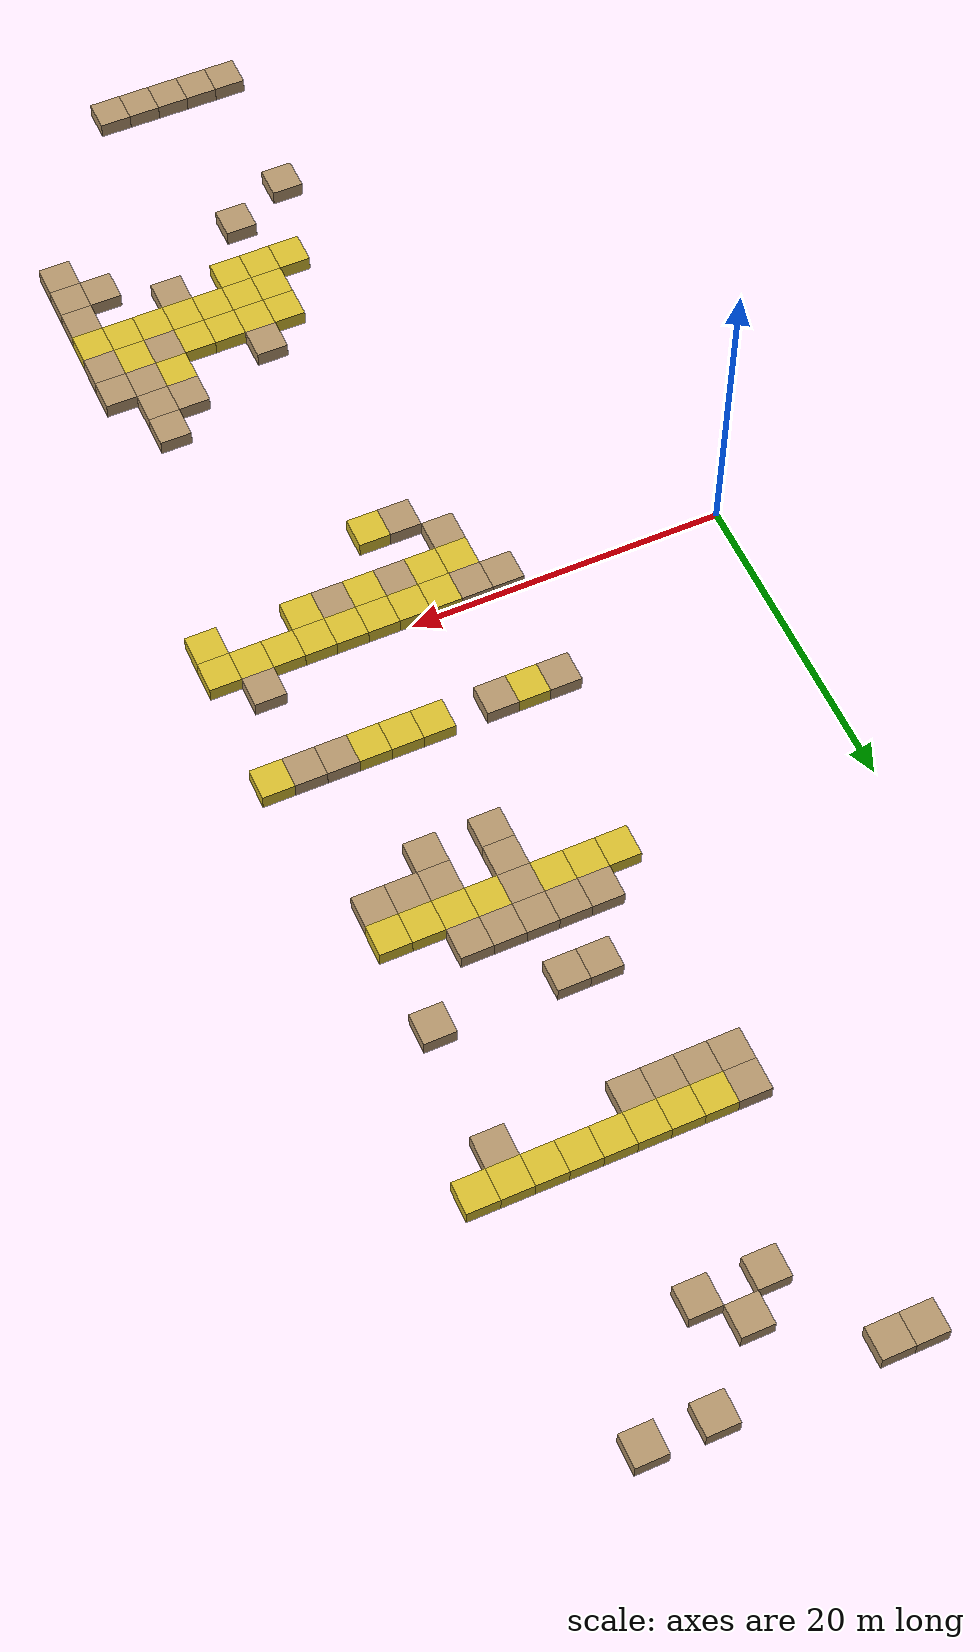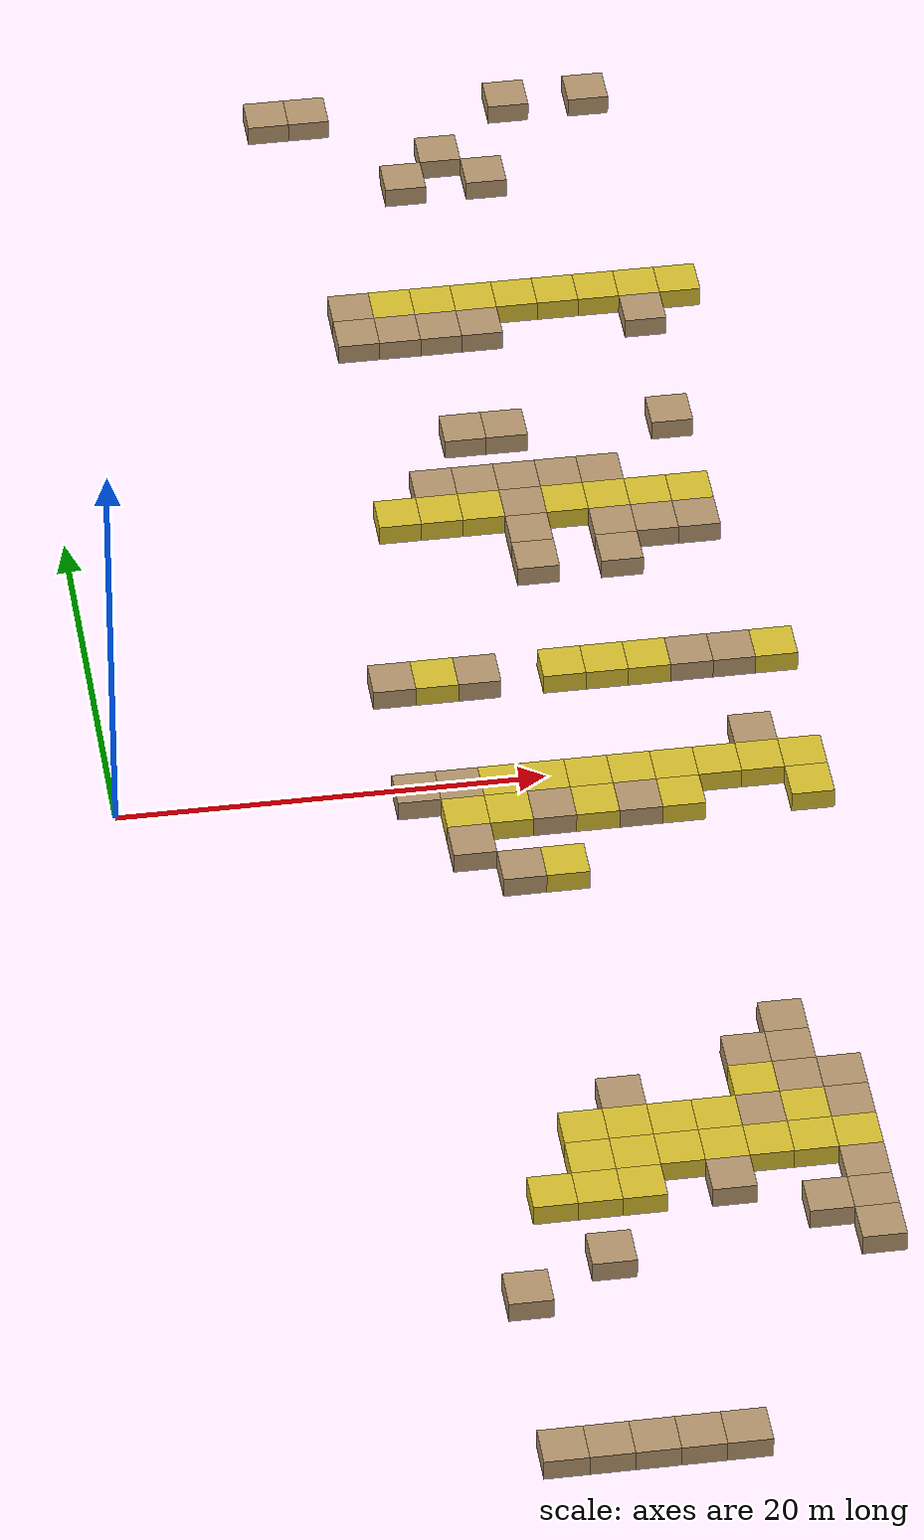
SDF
<sdf version="1.6">
 <world name="map5_factory_approx">
  <model name="map5_obstacle_blocks">
   <static>true</static>
   <link name="obs_0068_0030">
    <pose>27.790 -1.041 0.500 0 0 0</pose>
    <collision name="collision"><geometry><box><size>2.000 2.000 1.000</size></box></geometry></collision>
    <visual name="visual">
     <geometry><box><size>2.000 2.000 1.000</size></box></geometry>
     <material><ambient>0.84 0.74 0.18 1</ambient><diffuse>0.84 0.74 0.18 1</diffuse></material>
    </visual>
   </link>
   <link name="obs_0067_0030">
    <pose>25.790 -1.041 0.500 0 0 0</pose>
    <collision name="collision"><geometry><box><size>2.000 2.000 1.000</size></box></geometry></collision>
    <visual name="visual">
     <geometry><box><size>2.000 2.000 1.000</size></box></geometry>
     <material><ambient>0.84 0.74 0.18 1</ambient><diffuse>0.84 0.74 0.18 1</diffuse></material>
    </visual>
   </link>
   <link name="obs_0065_0031">
    <pose>21.790 -3.041 0.500 0 0 0</pose>
    <collision name="collision"><geometry><box><size>2.000 2.000 1.000</size></box></geometry></collision>
    <visual name="visual">
     <geometry><box><size>2.000 2.000 1.000</size></box></geometry>
     <material><ambient>0.84 0.74 0.18 1</ambient><diffuse>0.84 0.74 0.18 1</diffuse></material>
    </visual>
   </link>
   <link name="obs_0062_0031">
    <pose>15.790 -3.041 0.500 0 0 0</pose>
    <collision name="collision"><geometry><box><size>2.000 2.000 1.000</size></box></geometry></collision>
    <visual name="visual">
     <geometry><box><size>2.000 2.000 1.000</size></box></geometry>
     <material><ambient>0.84 0.74 0.18 1</ambient><diffuse>0.84 0.74 0.18 1</diffuse></material>
    </visual>
   </link>
   <link name="obs_0066_0030">
    <pose>23.790 -1.041 0.500 0 0 0</pose>
    <collision name="collision"><geometry><box><size>2.000 2.000 1.000</size></box></geometry></collision>
    <visual name="visual">
     <geometry><box><size>2.000 2.000 1.000</size></box></geometry>
     <material><ambient>0.84 0.74 0.18 1</ambient><diffuse>0.84 0.74 0.18 1</diffuse></material>
    </visual>
   </link>
   <link name="obs_0069_0030">
    <pose>29.790 -1.041 0.500 0 0 0</pose>
    <collision name="collision"><geometry><box><size>2.000 2.000 1.000</size></box></geometry></collision>
    <visual name="visual">
     <geometry><box><size>2.000 2.000 1.000</size></box></geometry>
     <material><ambient>0.84 0.74 0.18 1</ambient><diffuse>0.84 0.74 0.18 1</diffuse></material>
    </visual>
   </link>
   <link name="obs_0064_0030">
    <pose>19.790 -1.041 0.500 0 0 0</pose>
    <collision name="collision"><geometry><box><size>2.000 2.000 1.000</size></box></geometry></collision>
    <visual name="visual">
     <geometry><box><size>2.000 2.000 1.000</size></box></geometry>
     <material><ambient>0.84 0.74 0.18 1</ambient><diffuse>0.84 0.74 0.18 1</diffuse></material>
    </visual>
   </link>
   <link name="obs_0070_0030">
    <pose>31.790 -1.041 0.500 0 0 0</pose>
    <collision name="collision"><geometry><box><size>2.000 2.000 1.000</size></box></geometry></collision>
    <visual name="visual">
     <geometry><box><size>2.000 2.000 1.000</size></box></geometry>
     <material><ambient>0.84 0.74 0.18 1</ambient><diffuse>0.84 0.74 0.18 1</diffuse></material>
    </visual>
   </link>
   <link name="obs_0063_0043">
    <pose>17.790 -27.041 0.500 0 0 0</pose>
    <collision name="collision"><geometry><box><size>2.000 2.000 1.000</size></box></geometry></collision>
    <visual name="visual">
     <geometry><box><size>2.000 2.000 1.000</size></box></geometry>
     <material><ambient>0.84 0.74 0.18 1</ambient><diffuse>0.84 0.74 0.18 1</diffuse></material>
    </visual>
   </link>
   <link name="obs_0067_0031">
    <pose>25.790 -3.041 0.500 0 0 0</pose>
    <collision name="collision"><geometry><box><size>2.000 2.000 1.000</size></box></geometry></collision>
    <visual name="visual">
     <geometry><box><size>2.000 2.000 1.000</size></box></geometry>
     <material><ambient>0.84 0.74 0.18 1</ambient><diffuse>0.84 0.74 0.18 1</diffuse></material>
    </visual>
   </link>
   <link name="obs_0065_0030">
    <pose>21.790 -1.041 0.500 0 0 0</pose>
    <collision name="collision"><geometry><box><size>2.000 2.000 1.000</size></box></geometry></collision>
    <visual name="visual">
     <geometry><box><size>2.000 2.000 1.000</size></box></geometry>
     <material><ambient>0.84 0.74 0.18 1</ambient><diffuse>0.84 0.74 0.18 1</diffuse></material>
    </visual>
   </link>
   <link name="obs_0070_0031">
    <pose>31.790 -3.041 0.500 0 0 0</pose>
    <collision name="collision"><geometry><box><size>2.000 2.000 1.000</size></box></geometry></collision>
    <visual name="visual">
     <geometry><box><size>2.000 2.000 1.000</size></box></geometry>
     <material><ambient>0.84 0.74 0.18 1</ambient><diffuse>0.84 0.74 0.18 1</diffuse></material>
    </visual>
   </link>
   <link name="obs_0068_0042">
    <pose>27.790 -25.041 0.500 0 0 0</pose>
    <collision name="collision"><geometry><box><size>2.000 2.000 1.000</size></box></geometry></collision>
    <visual name="visual">
     <geometry><box><size>2.000 2.000 1.000</size></box></geometry>
     <material><ambient>0.84 0.74 0.18 1</ambient><diffuse>0.84 0.74 0.18 1</diffuse></material>
    </visual>
   </link>
   <link name="obs_0067_0043">
    <pose>25.790 -27.041 0.500 0 0 0</pose>
    <collision name="collision"><geometry><box><size>2.000 2.000 1.000</size></box></geometry></collision>
    <visual name="visual">
     <geometry><box><size>2.000 2.000 1.000</size></box></geometry>
     <material><ambient>0.84 0.74 0.18 1</ambient><diffuse>0.84 0.74 0.18 1</diffuse></material>
    </visual>
   </link>
   <link name="obs_0063_0044">
    <pose>17.790 -29.041 0.500 0 0 0</pose>
    <collision name="collision"><geometry><box><size>2.000 2.000 1.000</size></box></geometry></collision>
    <visual name="visual">
     <geometry><box><size>2.000 2.000 1.000</size></box></geometry>
     <material><ambient>0.84 0.74 0.18 1</ambient><diffuse>0.84 0.74 0.18 1</diffuse></material>
    </visual>
   </link>
   <link name="obs_0064_0042">
    <pose>19.790 -25.041 0.500 0 0 0</pose>
    <collision name="collision"><geometry><box><size>2.000 2.000 1.000</size></box></geometry></collision>
    <visual name="visual">
     <geometry><box><size>2.000 2.000 1.000</size></box></geometry>
     <material><ambient>0.84 0.74 0.18 1</ambient><diffuse>0.84 0.74 0.18 1</diffuse></material>
    </visual>
   </link>
   <link name="obs_0065_0043">
    <pose>21.790 -27.041 0.500 0 0 0</pose>
    <collision name="collision"><geometry><box><size>2.000 2.000 1.000</size></box></geometry></collision>
    <visual name="visual">
     <geometry><box><size>2.000 2.000 1.000</size></box></geometry>
     <material><ambient>0.84 0.74 0.18 1</ambient><diffuse>0.84 0.74 0.18 1</diffuse></material>
    </visual>
   </link>
   <link name="obs_0068_0043">
    <pose>27.790 -27.041 0.500 0 0 0</pose>
    <collision name="collision"><geometry><box><size>2.000 2.000 1.000</size></box></geometry></collision>
    <visual name="visual">
     <geometry><box><size>2.000 2.000 1.000</size></box></geometry>
     <material><ambient>0.84 0.74 0.18 1</ambient><diffuse>0.84 0.74 0.18 1</diffuse></material>
    </visual>
   </link>
   <link name="obs_0064_0043">
    <pose>19.790 -27.041 0.500 0 0 0</pose>
    <collision name="collision"><geometry><box><size>2.000 2.000 1.000</size></box></geometry></collision>
    <visual name="visual">
     <geometry><box><size>2.000 2.000 1.000</size></box></geometry>
     <material><ambient>0.84 0.74 0.18 1</ambient><diffuse>0.84 0.74 0.18 1</diffuse></material>
    </visual>
   </link>
   <link name="obs_0070_0026">
    <pose>31.790 6.959 0.500 0 0 0</pose>
    <collision name="collision"><geometry><box><size>2.000 2.000 1.000</size></box></geometry></collision>
    <visual name="visual">
     <geometry><box><size>2.000 2.000 1.000</size></box></geometry>
     <material><ambient>0.84 0.74 0.18 1</ambient><diffuse>0.84 0.74 0.18 1</diffuse></material>
    </visual>
   </link>
   <link name="obs_0063_0042">
    <pose>17.790 -25.041 0.500 0 0 0</pose>
    <collision name="collision"><geometry><box><size>2.000 2.000 1.000</size></box></geometry></collision>
    <visual name="visual">
     <geometry><box><size>2.000 2.000 1.000</size></box></geometry>
     <material><ambient>0.84 0.74 0.18 1</ambient><diffuse>0.84 0.74 0.18 1</diffuse></material>
    </visual>
   </link>
   <link name="obs_0070_0012">
    <pose>31.790 34.959 0.500 0 0 0</pose>
    <collision name="collision"><geometry><box><size>2.000 2.000 1.000</size></box></geometry></collision>
    <visual name="visual">
     <geometry><box><size>2.000 2.000 1.000</size></box></geometry>
     <material><ambient>0.84 0.74 0.18 1</ambient><diffuse>0.84 0.74 0.18 1</diffuse></material>
    </visual>
   </link>
   <link name="obs_0065_0026">
    <pose>21.790 6.959 0.500 0 0 0</pose>
    <collision name="collision"><geometry><box><size>2.000 2.000 1.000</size></box></geometry></collision>
    <visual name="visual">
     <geometry><box><size>2.000 2.000 1.000</size></box></geometry>
     <material><ambient>0.84 0.74 0.18 1</ambient><diffuse>0.84 0.74 0.18 1</diffuse></material>
    </visual>
   </link>
   <link name="obs_0062_0026">
    <pose>15.790 6.959 0.500 0 0 0</pose>
    <collision name="collision"><geometry><box><size>2.000 2.000 1.000</size></box></geometry></collision>
    <visual name="visual">
     <geometry><box><size>2.000 2.000 1.000</size></box></geometry>
     <material><ambient>0.84 0.74 0.18 1</ambient><diffuse>0.84 0.74 0.18 1</diffuse></material>
    </visual>
   </link>
   <link name="obs_0069_0043">
    <pose>29.790 -27.041 0.500 0 0 0</pose>
    <collision name="collision"><geometry><box><size>2.000 2.000 1.000</size></box></geometry></collision>
    <visual name="visual">
     <geometry><box><size>2.000 2.000 1.000</size></box></geometry>
     <material><ambient>0.84 0.74 0.18 1</ambient><diffuse>0.84 0.74 0.18 1</diffuse></material>
    </visual>
   </link>
   <link name="obs_0067_0012">
    <pose>25.790 34.959 0.500 0 0 0</pose>
    <collision name="collision"><geometry><box><size>2.000 2.000 1.000</size></box></geometry></collision>
    <visual name="visual">
     <geometry><box><size>2.000 2.000 1.000</size></box></geometry>
     <material><ambient>0.84 0.74 0.18 1</ambient><diffuse>0.84 0.74 0.18 1</diffuse></material>
    </visual>
   </link>
   <link name="obs_0066_0043">
    <pose>23.790 -27.041 0.500 0 0 0</pose>
    <collision name="collision"><geometry><box><size>2.000 2.000 1.000</size></box></geometry></collision>
    <visual name="visual">
     <geometry><box><size>2.000 2.000 1.000</size></box></geometry>
     <material><ambient>0.84 0.74 0.18 1</ambient><diffuse>0.84 0.74 0.18 1</diffuse></material>
    </visual>
   </link>
   <link name="obs_0068_0012">
    <pose>27.790 34.959 0.500 0 0 0</pose>
    <collision name="collision"><geometry><box><size>2.000 2.000 1.000</size></box></geometry></collision>
    <visual name="visual">
     <geometry><box><size>2.000 2.000 1.000</size></box></geometry>
     <material><ambient>0.84 0.74 0.18 1</ambient><diffuse>0.84 0.74 0.18 1</diffuse></material>
    </visual>
   </link>
   <link name="obs_0066_0012">
    <pose>23.790 34.959 0.500 0 0 0</pose>
    <collision name="collision"><geometry><box><size>2.000 2.000 1.000</size></box></geometry></collision>
    <visual name="visual">
     <geometry><box><size>2.000 2.000 1.000</size></box></geometry>
     <material><ambient>0.84 0.74 0.18 1</ambient><diffuse>0.84 0.74 0.18 1</diffuse></material>
    </visual>
   </link>
   <link name="obs_0067_0026">
    <pose>25.790 6.959 0.500 0 0 0</pose>
    <collision name="collision"><geometry><box><size>2.000 2.000 1.000</size></box></geometry></collision>
    <visual name="visual">
     <geometry><box><size>2.000 2.000 1.000</size></box></geometry>
     <material><ambient>0.84 0.74 0.18 1</ambient><diffuse>0.84 0.74 0.18 1</diffuse></material>
    </visual>
   </link>
   <link name="obs_0066_0042">
    <pose>23.790 -25.041 0.500 0 0 0</pose>
    <collision name="collision"><geometry><box><size>2.000 2.000 1.000</size></box></geometry></collision>
    <visual name="visual">
     <geometry><box><size>2.000 2.000 1.000</size></box></geometry>
     <material><ambient>0.84 0.74 0.18 1</ambient><diffuse>0.84 0.74 0.18 1</diffuse></material>
    </visual>
   </link>
   <link name="obs_0065_0012">
    <pose>21.790 34.959 0.500 0 0 0</pose>
    <collision name="collision"><geometry><box><size>2.000 2.000 1.000</size></box></geometry></collision>
    <visual name="visual">
     <geometry><box><size>2.000 2.000 1.000</size></box></geometry>
     <material><ambient>0.84 0.74 0.18 1</ambient><diffuse>0.84 0.74 0.18 1</diffuse></material>
    </visual>
   </link>
   <link name="obs_0069_0020">
    <pose>29.790 18.959 0.500 0 0 0</pose>
    <collision name="collision"><geometry><box><size>2.000 2.000 1.000</size></box></geometry></collision>
    <visual name="visual">
     <geometry><box><size>2.000 2.000 1.000</size></box></geometry>
     <material><ambient>0.84 0.74 0.18 1</ambient><diffuse>0.84 0.74 0.18 1</diffuse></material>
    </visual>
   </link>
   <link name="obs_0064_0020">
    <pose>19.790 18.959 0.500 0 0 0</pose>
    <collision name="collision"><geometry><box><size>2.000 2.000 1.000</size></box></geometry></collision>
    <visual name="visual">
     <geometry><box><size>2.000 2.000 1.000</size></box></geometry>
     <material><ambient>0.84 0.74 0.18 1</ambient><diffuse>0.84 0.74 0.18 1</diffuse></material>
    </visual>
   </link>
   <link name="obs_0063_0020">
    <pose>17.790 18.959 0.500 0 0 0</pose>
    <collision name="collision"><geometry><box><size>2.000 2.000 1.000</size></box></geometry></collision>
    <visual name="visual">
     <geometry><box><size>2.000 2.000 1.000</size></box></geometry>
     <material><ambient>0.84 0.74 0.18 1</ambient><diffuse>0.84 0.74 0.18 1</diffuse></material>
    </visual>
   </link>
   <link name="obs_0068_0020">
    <pose>27.790 18.959 0.500 0 0 0</pose>
    <collision name="collision"><geometry><box><size>2.000 2.000 1.000</size></box></geometry></collision>
    <visual name="visual">
     <geometry><box><size>2.000 2.000 1.000</size></box></geometry>
     <material><ambient>0.84 0.74 0.18 1</ambient><diffuse>0.84 0.74 0.18 1</diffuse></material>
    </visual>
   </link>
   <link name="obs_0065_0042">
    <pose>21.790 -25.041 0.500 0 0 0</pose>
    <collision name="collision"><geometry><box><size>2.000 2.000 1.000</size></box></geometry></collision>
    <visual name="visual">
     <geometry><box><size>2.000 2.000 1.000</size></box></geometry>
     <material><ambient>0.84 0.74 0.18 1</ambient><diffuse>0.84 0.74 0.18 1</diffuse></material>
    </visual>
   </link>
   <link name="obs_0067_0020">
    <pose>25.790 18.959 0.500 0 0 0</pose>
    <collision name="collision"><geometry><box><size>2.000 2.000 1.000</size></box></geometry></collision>
    <visual name="visual">
     <geometry><box><size>2.000 2.000 1.000</size></box></geometry>
     <material><ambient>0.84 0.74 0.18 1</ambient><diffuse>0.84 0.74 0.18 1</diffuse></material>
    </visual>
   </link>
   <link name="obs_0064_0012">
    <pose>19.790 34.959 0.500 0 0 0</pose>
    <collision name="collision"><geometry><box><size>2.000 2.000 1.000</size></box></geometry></collision>
    <visual name="visual">
     <geometry><box><size>2.000 2.000 1.000</size></box></geometry>
     <material><ambient>0.84 0.74 0.18 1</ambient><diffuse>0.84 0.74 0.18 1</diffuse></material>
    </visual>
   </link>
   <link name="obs_0063_0012">
    <pose>17.790 34.959 0.500 0 0 0</pose>
    <collision name="collision"><geometry><box><size>2.000 2.000 1.000</size></box></geometry></collision>
    <visual name="visual">
     <geometry><box><size>2.000 2.000 1.000</size></box></geometry>
     <material><ambient>0.84 0.74 0.18 1</ambient><diffuse>0.84 0.74 0.18 1</diffuse></material>
    </visual>
   </link>
   <link name="obs_0066_0020">
    <pose>23.790 18.959 0.500 0 0 0</pose>
    <collision name="collision"><geometry><box><size>2.000 2.000 1.000</size></box></geometry></collision>
    <visual name="visual">
     <geometry><box><size>2.000 2.000 1.000</size></box></geometry>
     <material><ambient>0.84 0.74 0.18 1</ambient><diffuse>0.84 0.74 0.18 1</diffuse></material>
    </visual>
   </link>
   <link name="obs_0062_0020">
    <pose>15.790 18.959 0.500 0 0 0</pose>
    <collision name="collision"><geometry><box><size>2.000 2.000 1.000</size></box></geometry></collision>
    <visual name="visual">
     <geometry><box><size>2.000 2.000 1.000</size></box></geometry>
     <material><ambient>0.84 0.74 0.18 1</ambient><diffuse>0.84 0.74 0.18 1</diffuse></material>
    </visual>
   </link>
   <link name="obs_0067_0041">
    <pose>25.790 -23.041 0.500 0 0 0</pose>
    <collision name="collision"><geometry><box><size>2.000 2.000 1.000</size></box></geometry></collision>
    <visual name="visual">
     <geometry><box><size>2.000 2.000 1.000</size></box></geometry>
     <material><ambient>0.84 0.74 0.18 1</ambient><diffuse>0.84 0.74 0.18 1</diffuse></material>
    </visual>
   </link>
   <link name="obs_0069_0012">
    <pose>29.790 34.959 0.500 0 0 0</pose>
    <collision name="collision"><geometry><box><size>2.000 2.000 1.000</size></box></geometry></collision>
    <visual name="visual">
     <geometry><box><size>2.000 2.000 1.000</size></box></geometry>
     <material><ambient>0.84 0.74 0.18 1</ambient><diffuse>0.84 0.74 0.18 1</diffuse></material>
    </visual>
   </link>
   <link name="obs_0066_0026">
    <pose>23.790 6.959 0.500 0 0 0</pose>
    <collision name="collision"><geometry><box><size>2.000 2.000 1.000</size></box></geometry></collision>
    <visual name="visual">
     <geometry><box><size>2.000 2.000 1.000</size></box></geometry>
     <material><ambient>0.84 0.74 0.18 1</ambient><diffuse>0.84 0.74 0.18 1</diffuse></material>
    </visual>
   </link>
   <link name="obs_0064_0033">
    <pose>19.790 -7.041 0.500 0 0 0</pose>
    <collision name="collision"><geometry><box><size>2.000 2.000 1.000</size></box></geometry></collision>
    <visual name="visual">
     <geometry><box><size>2.000 2.000 1.000</size></box></geometry>
     <material><ambient>0.84 0.74 0.18 1</ambient><diffuse>0.84 0.74 0.18 1</diffuse></material>
    </visual>
   </link>
   <link name="obs_0063_0031">
    <pose>17.790 -3.041 0.500 0 0 0</pose>
    <collision name="collision"><geometry><box><size>2.000 2.000 1.000</size></box></geometry></collision>
    <visual name="visual">
     <geometry><box><size>2.000 2.000 1.000</size></box></geometry>
     <material><ambient>0.84 0.74 0.18 1</ambient><diffuse>0.84 0.74 0.18 1</diffuse></material>
    </visual>
   </link>
   <link name="obs_0062_0044">
    <pose>15.790 -29.041 0.500 0 0 0</pose>
    <collision name="collision"><geometry><box><size>2.000 2.000 1.000</size></box></geometry></collision>
    <visual name="visual">
     <geometry><box><size>2.000 2.000 1.000</size></box></geometry>
     <material><ambient>0.84 0.74 0.18 1</ambient><diffuse>0.84 0.74 0.18 1</diffuse></material>
    </visual>
   </link>
   <link name="obs_0064_0044">
    <pose>19.790 -29.041 0.500 0 0 0</pose>
    <collision name="collision"><geometry><box><size>2.000 2.000 1.000</size></box></geometry></collision>
    <visual name="visual">
     <geometry><box><size>2.000 2.000 1.000</size></box></geometry>
     <material><ambient>0.84 0.74 0.18 1</ambient><diffuse>0.84 0.74 0.18 1</diffuse></material>
    </visual>
   </link>
   <link name="obs_0063_0030">
    <pose>17.790 -1.041 0.500 0 0 0</pose>
    <collision name="collision"><geometry><box><size>2.000 2.000 1.000</size></box></geometry></collision>
    <visual name="visual">
     <geometry><box><size>2.000 2.000 1.000</size></box></geometry>
     <material><ambient>0.84 0.74 0.18 1</ambient><diffuse>0.84 0.74 0.18 1</diffuse></material>
    </visual>
   </link>
   <link name="obs_0065_0020">
    <pose>21.790 18.959 0.500 0 0 0</pose>
    <collision name="collision"><geometry><box><size>2.000 2.000 1.000</size></box></geometry></collision>
    <visual name="visual">
     <geometry><box><size>2.000 2.000 1.000</size></box></geometry>
     <material><ambient>0.70 0.58 0.42 1</ambient><diffuse>0.70 0.58 0.42 1</diffuse></material>
    </visual>
   </link>
   <link name="obs_0069_0017">
    <pose>29.790 24.959 0.500 0 0 0</pose>
    <collision name="collision"><geometry><box><size>2.000 2.000 1.000</size></box></geometry></collision>
    <visual name="visual">
     <geometry><box><size>2.000 2.000 1.000</size></box></geometry>
     <material><ambient>0.70 0.58 0.42 1</ambient><diffuse>0.70 0.58 0.42 1</diffuse></material>
    </visual>
   </link>
   <link name="obs_0062_0012">
    <pose>15.790 34.959 0.500 0 0 0</pose>
    <collision name="collision"><geometry><box><size>2.000 2.000 1.000</size></box></geometry></collision>
    <visual name="visual">
     <geometry><box><size>2.000 2.000 1.000</size></box></geometry>
     <material><ambient>0.70 0.58 0.42 1</ambient><diffuse>0.70 0.58 0.42 1</diffuse></material>
    </visual>
   </link>
   <link name="obs_0061_0026">
    <pose>13.790 6.959 0.500 0 0 0</pose>
    <collision name="collision"><geometry><box><size>2.000 2.000 1.000</size></box></geometry></collision>
    <visual name="visual">
     <geometry><box><size>2.000 2.000 1.000</size></box></geometry>
     <material><ambient>0.70 0.58 0.42 1</ambient><diffuse>0.70 0.58 0.42 1</diffuse></material>
    </visual>
   </link>
   <link name="obs_0064_0031">
    <pose>19.790 -3.041 0.500 0 0 0</pose>
    <collision name="collision"><geometry><box><size>2.000 2.000 1.000</size></box></geometry></collision>
    <visual name="visual">
     <geometry><box><size>2.000 2.000 1.000</size></box></geometry>
     <material><ambient>0.70 0.58 0.42 1</ambient><diffuse>0.70 0.58 0.42 1</diffuse></material>
    </visual>
   </link>
   <link name="obs_0062_0052">
    <pose>15.790 -45.041 0.500 0 0 0</pose>
    <collision name="collision"><geometry><box><size>2.000 2.000 1.000</size></box></geometry></collision>
    <visual name="visual">
     <geometry><box><size>2.000 2.000 1.000</size></box></geometry>
     <material><ambient>0.70 0.58 0.42 1</ambient><diffuse>0.70 0.58 0.42 1</diffuse></material>
    </visual>
   </link>
   <link name="obs_0069_0026">
    <pose>29.790 6.959 0.500 0 0 0</pose>
    <collision name="collision"><geometry><box><size>2.000 2.000 1.000</size></box></geometry></collision>
    <visual name="visual">
     <geometry><box><size>2.000 2.000 1.000</size></box></geometry>
     <material><ambient>0.70 0.58 0.42 1</ambient><diffuse>0.70 0.58 0.42 1</diffuse></material>
    </visual>
   </link>
   <link name="obs_0064_0052">
    <pose>19.790 -45.041 0.500 0 0 0</pose>
    <collision name="collision"><geometry><box><size>2.000 2.000 1.000</size></box></geometry></collision>
    <visual name="visual">
     <geometry><box><size>2.000 2.000 1.000</size></box></geometry>
     <material><ambient>0.70 0.58 0.42 1</ambient><diffuse>0.70 0.58 0.42 1</diffuse></material>
    </visual>
   </link>
   <link name="obs_0064_0013">
    <pose>19.790 32.959 0.500 0 0 0</pose>
    <collision name="collision"><geometry><box><size>2.000 2.000 1.000</size></box></geometry></collision>
    <visual name="visual">
     <geometry><box><size>2.000 2.000 1.000</size></box></geometry>
     <material><ambient>0.70 0.58 0.42 1</ambient><diffuse>0.70 0.58 0.42 1</diffuse></material>
    </visual>
   </link>
   <link name="obs_0069_0013">
    <pose>29.790 32.959 0.500 0 0 0</pose>
    <collision name="collision"><geometry><box><size>2.000 2.000 1.000</size></box></geometry></collision>
    <visual name="visual">
     <geometry><box><size>2.000 2.000 1.000</size></box></geometry>
     <material><ambient>0.70 0.58 0.42 1</ambient><diffuse>0.70 0.58 0.42 1</diffuse></material>
    </visual>
   </link>
   <link name="obs_0065_0017">
    <pose>21.790 24.959 0.500 0 0 0</pose>
    <collision name="collision"><geometry><box><size>2.000 2.000 1.000</size></box></geometry></collision>
    <visual name="visual">
     <geometry><box><size>2.000 2.000 1.000</size></box></geometry>
     <material><ambient>0.70 0.58 0.42 1</ambient><diffuse>0.70 0.58 0.42 1</diffuse></material>
    </visual>
   </link>
   <link name="obs_0065_0021">
    <pose>21.790 16.959 0.500 0 0 0</pose>
    <collision name="collision"><geometry><box><size>2.000 2.000 1.000</size></box></geometry></collision>
    <visual name="visual">
     <geometry><box><size>2.000 2.000 1.000</size></box></geometry>
     <material><ambient>0.70 0.58 0.42 1</ambient><diffuse>0.70 0.58 0.42 1</diffuse></material>
    </visual>
   </link>
   <link name="obs_0065_0013">
    <pose>21.790 32.959 0.500 0 0 0</pose>
    <collision name="collision"><geometry><box><size>2.000 2.000 1.000</size></box></geometry></collision>
    <visual name="visual">
     <geometry><box><size>2.000 2.000 1.000</size></box></geometry>
     <material><ambient>0.70 0.58 0.42 1</ambient><diffuse>0.70 0.58 0.42 1</diffuse></material>
    </visual>
   </link>
   <link name="obs_0061_0030">
    <pose>13.790 -1.041 0.500 0 0 0</pose>
    <collision name="collision"><geometry><box><size>2.000 2.000 1.000</size></box></geometry></collision>
    <visual name="visual">
     <geometry><box><size>2.000 2.000 1.000</size></box></geometry>
     <material><ambient>0.70 0.58 0.42 1</ambient><diffuse>0.70 0.58 0.42 1</diffuse></material>
    </visual>
   </link>
   <link name="obs_0062_0030">
    <pose>15.790 -1.041 0.500 0 0 0</pose>
    <collision name="collision"><geometry><box><size>2.000 2.000 1.000</size></box></geometry></collision>
    <visual name="visual">
     <geometry><box><size>2.000 2.000 1.000</size></box></geometry>
     <material><ambient>0.70 0.58 0.42 1</ambient><diffuse>0.70 0.58 0.42 1</diffuse></material>
    </visual>
   </link>
   <link name="obs_0067_0040">
    <pose>25.790 -21.041 0.500 0 0 0</pose>
    <collision name="collision"><geometry><box><size>2.000 2.000 1.000</size></box></geometry></collision>
    <visual name="visual">
     <geometry><box><size>2.000 2.000 1.000</size></box></geometry>
     <material><ambient>0.70 0.58 0.42 1</ambient><diffuse>0.70 0.58 0.42 1</diffuse></material>
    </visual>
   </link>
   <link name="obs_0065_0022">
    <pose>21.790 14.959 0.500 0 0 0</pose>
    <collision name="collision"><geometry><box><size>2.000 2.000 1.000</size></box></geometry></collision>
    <visual name="visual">
     <geometry><box><size>2.000 2.000 1.000</size></box></geometry>
     <material><ambient>0.70 0.58 0.42 1</ambient><diffuse>0.70 0.58 0.42 1</diffuse></material>
    </visual>
   </link>
   <link name="obs_0063_0052">
    <pose>17.790 -45.041 0.500 0 0 0</pose>
    <collision name="collision"><geometry><box><size>2.000 2.000 1.000</size></box></geometry></collision>
    <visual name="visual">
     <geometry><box><size>2.000 2.000 1.000</size></box></geometry>
     <material><ambient>0.70 0.58 0.42 1</ambient><diffuse>0.70 0.58 0.42 1</diffuse></material>
    </visual>
   </link>
   <link name="obs_0063_0026">
    <pose>17.790 6.959 0.500 0 0 0</pose>
    <collision name="collision"><geometry><box><size>2.000 2.000 1.000</size></box></geometry></collision>
    <visual name="visual">
     <geometry><box><size>2.000 2.000 1.000</size></box></geometry>
     <material><ambient>0.70 0.58 0.42 1</ambient><diffuse>0.70 0.58 0.42 1</diffuse></material>
    </visual>
   </link>
   <link name="obs_0069_0021">
    <pose>29.790 16.959 0.500 0 0 0</pose>
    <collision name="collision"><geometry><box><size>2.000 2.000 1.000</size></box></geometry></collision>
    <visual name="visual">
     <geometry><box><size>2.000 2.000 1.000</size></box></geometry>
     <material><ambient>0.70 0.58 0.42 1</ambient><diffuse>0.70 0.58 0.42 1</diffuse></material>
    </visual>
   </link>
   <link name="obs_0062_0013">
    <pose>15.790 32.959 0.500 0 0 0</pose>
    <collision name="collision"><geometry><box><size>2.000 2.000 1.000</size></box></geometry></collision>
    <visual name="visual">
     <geometry><box><size>2.000 2.000 1.000</size></box></geometry>
     <material><ambient>0.70 0.58 0.42 1</ambient><diffuse>0.70 0.58 0.42 1</diffuse></material>
    </visual>
   </link>
   <link name="obs_0061_0052">
    <pose>13.790 -45.041 0.500 0 0 0</pose>
    <collision name="collision"><geometry><box><size>2.000 2.000 1.000</size></box></geometry></collision>
    <visual name="visual">
     <geometry><box><size>2.000 2.000 1.000</size></box></geometry>
     <material><ambient>0.70 0.58 0.42 1</ambient><diffuse>0.70 0.58 0.42 1</diffuse></material>
    </visual>
   </link>
   <link name="obs_0069_0046">
    <pose>29.790 -33.041 0.500 0 0 0</pose>
    <collision name="collision"><geometry><box><size>2.000 2.000 1.000</size></box></geometry></collision>
    <visual name="visual">
     <geometry><box><size>2.000 2.000 1.000</size></box></geometry>
     <material><ambient>0.70 0.58 0.42 1</ambient><diffuse>0.70 0.58 0.42 1</diffuse></material>
    </visual>
   </link>
   <link name="obs_0068_0040">
    <pose>27.790 -21.041 0.500 0 0 0</pose>
    <collision name="collision"><geometry><box><size>2.000 2.000 1.000</size></box></geometry></collision>
    <visual name="visual">
     <geometry><box><size>2.000 2.000 1.000</size></box></geometry>
     <material><ambient>0.70 0.58 0.42 1</ambient><diffuse>0.70 0.58 0.42 1</diffuse></material>
    </visual>
   </link>
   <link name="obs_0063_0013">
    <pose>17.790 32.959 0.500 0 0 0</pose>
    <collision name="collision"><geometry><box><size>2.000 2.000 1.000</size></box></geometry></collision>
    <visual name="visual">
     <geometry><box><size>2.000 2.000 1.000</size></box></geometry>
     <material><ambient>0.70 0.58 0.42 1</ambient><diffuse>0.70 0.58 0.42 1</diffuse></material>
    </visual>
   </link>
   <link name="obs_0063_0046">
    <pose>17.790 -33.041 0.500 0 0 0</pose>
    <collision name="collision"><geometry><box><size>2.000 2.000 1.000</size></box></geometry></collision>
    <visual name="visual">
     <geometry><box><size>2.000 2.000 1.000</size></box></geometry>
     <material><ambient>0.70 0.58 0.42 1</ambient><diffuse>0.70 0.58 0.42 1</diffuse></material>
    </visual>
   </link>
   <link name="obs_0068_0041">
    <pose>27.790 -23.041 0.500 0 0 0</pose>
    <collision name="collision"><geometry><box><size>2.000 2.000 1.000</size></box></geometry></collision>
    <visual name="visual">
     <geometry><box><size>2.000 2.000 1.000</size></box></geometry>
     <material><ambient>0.70 0.58 0.42 1</ambient><diffuse>0.70 0.58 0.42 1</diffuse></material>
    </visual>
   </link>
   <link name="obs_0067_0021">
    <pose>25.790 16.959 0.500 0 0 0</pose>
    <collision name="collision"><geometry><box><size>2.000 2.000 1.000</size></box></geometry></collision>
    <visual name="visual">
     <geometry><box><size>2.000 2.000 1.000</size></box></geometry>
     <material><ambient>0.70 0.58 0.42 1</ambient><diffuse>0.70 0.58 0.42 1</diffuse></material>
    </visual>
   </link>
   <link name="obs_0064_0007">
    <pose>19.790 44.959 0.500 0 0 0</pose>
    <collision name="collision"><geometry><box><size>2.000 2.000 1.000</size></box></geometry></collision>
    <visual name="visual">
     <geometry><box><size>2.000 2.000 1.000</size></box></geometry>
     <material><ambient>0.70 0.58 0.42 1</ambient><diffuse>0.70 0.58 0.42 1</diffuse></material>
    </visual>
   </link>
   <link name="obs_0064_0017">
    <pose>19.790 24.959 0.500 0 0 0</pose>
    <collision name="collision"><geometry><box><size>2.000 2.000 1.000</size></box></geometry></collision>
    <visual name="visual">
     <geometry><box><size>2.000 2.000 1.000</size></box></geometry>
     <material><ambient>0.70 0.58 0.42 1</ambient><diffuse>0.70 0.58 0.42 1</diffuse></material>
    </visual>
   </link>
   <link name="obs_0069_0041">
    <pose>29.790 -23.041 0.500 0 0 0</pose>
    <collision name="collision"><geometry><box><size>2.000 2.000 1.000</size></box></geometry></collision>
    <visual name="visual">
     <geometry><box><size>2.000 2.000 1.000</size></box></geometry>
     <material><ambient>0.70 0.58 0.42 1</ambient><diffuse>0.70 0.58 0.42 1</diffuse></material>
    </visual>
   </link>
   <link name="obs_0067_0019">
    <pose>25.790 20.959 0.500 0 0 0</pose>
    <collision name="collision"><geometry><box><size>2.000 2.000 1.000</size></box></geometry></collision>
    <visual name="visual">
     <geometry><box><size>2.000 2.000 1.000</size></box></geometry>
     <material><ambient>0.70 0.58 0.42 1</ambient><diffuse>0.70 0.58 0.42 1</diffuse></material>
    </visual>
   </link>
   <link name="obs_0066_0031">
    <pose>23.790 -3.041 0.500 0 0 0</pose>
    <collision name="collision"><geometry><box><size>2.000 2.000 1.000</size></box></geometry></collision>
    <visual name="visual">
     <geometry><box><size>2.000 2.000 1.000</size></box></geometry>
     <material><ambient>0.70 0.58 0.42 1</ambient><diffuse>0.70 0.58 0.42 1</diffuse></material>
    </visual>
   </link>
   <link name="obs_0062_0004">
    <pose>15.790 50.959 0.500 0 0 0</pose>
    <collision name="collision"><geometry><box><size>2.000 2.000 1.000</size></box></geometry></collision>
    <visual name="visual">
     <geometry><box><size>2.000 2.000 1.000</size></box></geometry>
     <material><ambient>0.70 0.58 0.42 1</ambient><diffuse>0.70 0.58 0.42 1</diffuse></material>
    </visual>
   </link>
   <link name="obs_0064_0041">
    <pose>19.790 -23.041 0.500 0 0 0</pose>
    <collision name="collision"><geometry><box><size>2.000 2.000 1.000</size></box></geometry></collision>
    <visual name="visual">
     <geometry><box><size>2.000 2.000 1.000</size></box></geometry>
     <material><ambient>0.70 0.58 0.42 1</ambient><diffuse>0.70 0.58 0.42 1</diffuse></material>
    </visual>
   </link>
   <link name="obs_0067_0042">
    <pose>25.790 -25.041 0.500 0 0 0</pose>
    <collision name="collision"><geometry><box><size>2.000 2.000 1.000</size></box></geometry></collision>
    <visual name="visual">
     <geometry><box><size>2.000 2.000 1.000</size></box></geometry>
     <material><ambient>0.70 0.58 0.42 1</ambient><diffuse>0.70 0.58 0.42 1</diffuse></material>
    </visual>
   </link>
   <link name="obs_0069_0004">
    <pose>29.790 50.959 0.500 0 0 0</pose>
    <collision name="collision"><geometry><box><size>2.000 2.000 1.000</size></box></geometry></collision>
    <visual name="visual">
     <geometry><box><size>2.000 2.000 1.000</size></box></geometry>
     <material><ambient>0.70 0.58 0.42 1</ambient><diffuse>0.70 0.58 0.42 1</diffuse></material>
    </visual>
   </link>
   <link name="obs_0068_0026">
    <pose>27.790 6.959 0.500 0 0 0</pose>
    <collision name="collision"><geometry><box><size>2.000 2.000 1.000</size></box></geometry></collision>
    <visual name="visual">
     <geometry><box><size>2.000 2.000 1.000</size></box></geometry>
     <material><ambient>0.70 0.58 0.42 1</ambient><diffuse>0.70 0.58 0.42 1</diffuse></material>
    </visual>
   </link>
   <link name="obs_0066_0007">
    <pose>23.790 44.959 0.500 0 0 0</pose>
    <collision name="collision"><geometry><box><size>2.000 2.000 1.000</size></box></geometry></collision>
    <visual name="visual">
     <geometry><box><size>2.000 2.000 1.000</size></box></geometry>
     <material><ambient>0.70 0.58 0.42 1</ambient><diffuse>0.70 0.58 0.42 1</diffuse></material>
    </visual>
   </link>
   <link name="obs_0062_0032">
    <pose>15.790 -5.041 0.500 0 0 0</pose>
    <collision name="collision"><geometry><box><size>2.000 2.000 1.000</size></box></geometry></collision>
    <visual name="visual">
     <geometry><box><size>2.000 2.000 1.000</size></box></geometry>
     <material><ambient>0.70 0.58 0.42 1</ambient><diffuse>0.70 0.58 0.42 1</diffuse></material>
    </visual>
   </link>
   <link name="obs_0061_0004">
    <pose>13.790 50.959 0.500 0 0 0</pose>
    <collision name="collision"><geometry><box><size>2.000 2.000 1.000</size></box></geometry></collision>
    <visual name="visual">
     <geometry><box><size>2.000 2.000 1.000</size></box></geometry>
     <material><ambient>0.70 0.58 0.42 1</ambient><diffuse>0.70 0.58 0.42 1</diffuse></material>
    </visual>
   </link>
   <link name="obs_0068_0039">
    <pose>27.790 -19.041 0.500 0 0 0</pose>
    <collision name="collision"><geometry><box><size>2.000 2.000 1.000</size></box></geometry></collision>
    <visual name="visual">
     <geometry><box><size>2.000 2.000 1.000</size></box></geometry>
     <material><ambient>0.70 0.58 0.42 1</ambient><diffuse>0.70 0.58 0.42 1</diffuse></material>
    </visual>
   </link>
   <link name="obs_0069_0045">
    <pose>29.790 -31.041 0.500 0 0 0</pose>
    <collision name="collision"><geometry><box><size>2.000 2.000 1.000</size></box></geometry></collision>
    <visual name="visual">
     <geometry><box><size>2.000 2.000 1.000</size></box></geometry>
     <material><ambient>0.70 0.58 0.42 1</ambient><diffuse>0.70 0.58 0.42 1</diffuse></material>
    </visual>
   </link>
   <link name="obs_0066_0019">
    <pose>23.790 20.959 0.500 0 0 0</pose>
    <collision name="collision"><geometry><box><size>2.000 2.000 1.000</size></box></geometry></collision>
    <visual name="visual">
     <geometry><box><size>2.000 2.000 1.000</size></box></geometry>
     <material><ambient>0.70 0.58 0.42 1</ambient><diffuse>0.70 0.58 0.42 1</diffuse></material>
    </visual>
   </link>
   <link name="obs_0069_0044">
    <pose>29.790 -29.041 0.500 0 0 0</pose>
    <collision name="collision"><geometry><box><size>2.000 2.000 1.000</size></box></geometry></collision>
    <visual name="visual">
     <geometry><box><size>2.000 2.000 1.000</size></box></geometry>
     <material><ambient>0.70 0.58 0.42 1</ambient><diffuse>0.70 0.58 0.42 1</diffuse></material>
    </visual>
   </link>
   <link name="obs_0067_0022">
    <pose>25.790 14.959 0.500 0 0 0</pose>
    <collision name="collision"><geometry><box><size>2.000 2.000 1.000</size></box></geometry></collision>
    <visual name="visual">
     <geometry><box><size>2.000 2.000 1.000</size></box></geometry>
     <material><ambient>0.70 0.58 0.42 1</ambient><diffuse>0.70 0.58 0.42 1</diffuse></material>
    </visual>
   </link>
   <link name="obs_0069_0029">
    <pose>29.790 0.959 0.500 0 0 0</pose>
    <collision name="collision"><geometry><box><size>2.000 2.000 1.000</size></box></geometry></collision>
    <visual name="visual">
     <geometry><box><size>2.000 2.000 1.000</size></box></geometry>
     <material><ambient>0.70 0.58 0.42 1</ambient><diffuse>0.70 0.58 0.42 1</diffuse></material>
    </visual>
   </link>
   <link name="obs_0068_0045">
    <pose>27.790 -31.041 0.500 0 0 0</pose>
    <collision name="collision"><geometry><box><size>2.000 2.000 1.000</size></box></geometry></collision>
    <visual name="visual">
     <geometry><box><size>2.000 2.000 1.000</size></box></geometry>
     <material><ambient>0.70 0.58 0.42 1</ambient><diffuse>0.70 0.58 0.42 1</diffuse></material>
    </visual>
   </link>
   <link name="obs_0068_0021">
    <pose>27.790 16.959 0.500 0 0 0</pose>
    <collision name="collision"><geometry><box><size>2.000 2.000 1.000</size></box></geometry></collision>
    <visual name="visual">
     <geometry><box><size>2.000 2.000 1.000</size></box></geometry>
     <material><ambient>0.70 0.58 0.42 1</ambient><diffuse>0.70 0.58 0.42 1</diffuse></material>
    </visual>
   </link>
   <link name="obs_0065_0006">
    <pose>21.790 46.959 0.500 0 0 0</pose>
    <collision name="collision"><geometry><box><size>2.000 2.000 1.000</size></box></geometry></collision>
    <visual name="visual">
     <geometry><box><size>2.000 2.000 1.000</size></box></geometry>
     <material><ambient>0.70 0.58 0.42 1</ambient><diffuse>0.70 0.58 0.42 1</diffuse></material>
    </visual>
   </link>
   <link name="obs_0064_0019">
    <pose>19.790 20.959 0.500 0 0 0</pose>
    <collision name="collision"><geometry><box><size>2.000 2.000 1.000</size></box></geometry></collision>
    <visual name="visual">
     <geometry><box><size>2.000 2.000 1.000</size></box></geometry>
     <material><ambient>0.70 0.58 0.42 1</ambient><diffuse>0.70 0.58 0.42 1</diffuse></material>
    </visual>
   </link>
   <link name="obs_0061_0047">
    <pose>13.790 -35.041 0.500 0 0 0</pose>
    <collision name="collision"><geometry><box><size>2.000 2.000 1.000</size></box></geometry></collision>
    <visual name="visual">
     <geometry><box><size>2.000 2.000 1.000</size></box></geometry>
     <material><ambient>0.70 0.58 0.42 1</ambient><diffuse>0.70 0.58 0.42 1</diffuse></material>
    </visual>
   </link>
   <link name="obs_0067_0004">
    <pose>25.790 50.959 0.500 0 0 0</pose>
    <collision name="collision"><geometry><box><size>2.000 2.000 1.000</size></box></geometry></collision>
    <visual name="visual">
     <geometry><box><size>2.000 2.000 1.000</size></box></geometry>
     <material><ambient>0.70 0.58 0.42 1</ambient><diffuse>0.70 0.58 0.42 1</diffuse></material>
    </visual>
   </link>
   <link name="obs_0063_0019">
    <pose>17.790 20.959 0.500 0 0 0</pose>
    <collision name="collision"><geometry><box><size>2.000 2.000 1.000</size></box></geometry></collision>
    <visual name="visual">
     <geometry><box><size>2.000 2.000 1.000</size></box></geometry>
     <material><ambient>0.70 0.58 0.42 1</ambient><diffuse>0.70 0.58 0.42 1</diffuse></material>
    </visual>
   </link>
   <link name="obs_0069_0042">
    <pose>29.790 -25.041 0.500 0 0 0</pose>
    <collision name="collision"><geometry><box><size>2.000 2.000 1.000</size></box></geometry></collision>
    <visual name="visual">
     <geometry><box><size>2.000 2.000 1.000</size></box></geometry>
     <material><ambient>0.70 0.58 0.42 1</ambient><diffuse>0.70 0.58 0.42 1</diffuse></material>
    </visual>
   </link>
   <link name="obs_0066_0044">
    <pose>23.790 -29.041 0.500 0 0 0</pose>
    <collision name="collision"><geometry><box><size>2.000 2.000 1.000</size></box></geometry></collision>
    <visual name="visual">
     <geometry><box><size>2.000 2.000 1.000</size></box></geometry>
     <material><ambient>0.70 0.58 0.42 1</ambient><diffuse>0.70 0.58 0.42 1</diffuse></material>
    </visual>
   </link>
   <link name="obs_0065_0052">
    <pose>21.790 -45.041 0.500 0 0 0</pose>
    <collision name="collision"><geometry><box><size>2.000 2.000 1.000</size></box></geometry></collision>
    <visual name="visual">
     <geometry><box><size>2.000 2.000 1.000</size></box></geometry>
     <material><ambient>0.70 0.58 0.42 1</ambient><diffuse>0.70 0.58 0.42 1</diffuse></material>
    </visual>
   </link>
   <link name="obs_0065_0019">
    <pose>21.790 20.959 0.500 0 0 0</pose>
    <collision name="collision"><geometry><box><size>2.000 2.000 1.000</size></box></geometry></collision>
    <visual name="visual">
     <geometry><box><size>2.000 2.000 1.000</size></box></geometry>
     <material><ambient>0.70 0.58 0.42 1</ambient><diffuse>0.70 0.58 0.42 1</diffuse></material>
    </visual>
   </link>
   <link name="obs_0063_0033">
    <pose>17.790 -7.041 0.500 0 0 0</pose>
    <collision name="collision"><geometry><box><size>2.000 2.000 1.000</size></box></geometry></collision>
    <visual name="visual">
     <geometry><box><size>2.000 2.000 1.000</size></box></geometry>
     <material><ambient>0.70 0.58 0.42 1</ambient><diffuse>0.70 0.58 0.42 1</diffuse></material>
    </visual>
   </link>
  </model>
 </world>
</sdf>
